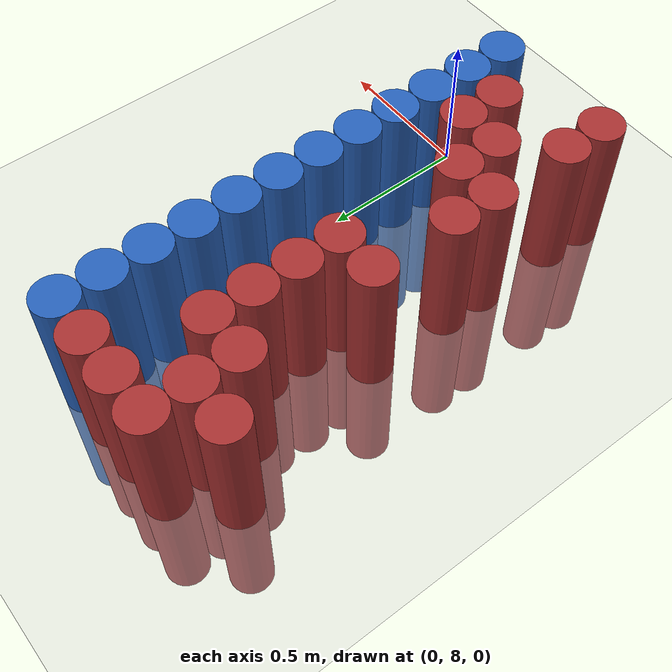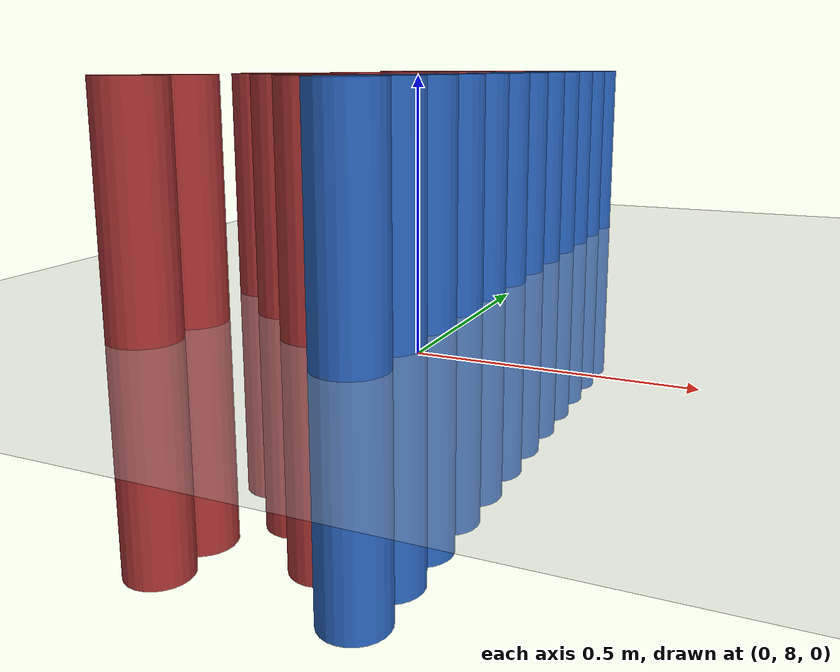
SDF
<sdf version="1.6">
 <world name="default">
  <model name="ground_plane">
   <static>1</static>
   <link name="link">
    <collision name="collision">
     <geometry><plane><normal>0 0 1</normal><size>100 100</size></plane></geometry>
     <surface><friction><ode><mu>100</mu><mu2>50</mu2></ode></friction></surface>
    </collision>
    <visual name="visual">
     <cast_shadows>0</cast_shadows>
     <geometry><plane><normal>0 0 1</normal><size>100 100</size></plane></geometry>
     <material>
      <script><uri>file://media/materials/scripts/gazebo.material</uri><name>Gazebo/Grey</name></script>
     </material>
    </visual>
   </link>
  </model>
  <model name="unit_cylinder_292">
   <static>1</static>
   <pose>-0.675000 9.375000 0.000000 0.000000 0.000000 0.000000</pose>
   <link name="link">
    <inertial>
     <mass>1</mass>
     <inertia><ixx>0.145833</ixx><ixy>0</ixy><ixz>0</ixz><iyy>0.145833</iyy><iyz>0</iyz><izz>0.125</izz></inertia>
    </inertial>
    <collision name="collision">
     <geometry><cylinder><radius>0.075000</radius><length>1</length></cylinder></geometry>
    </collision>
    <visual name="visual">
     <geometry><cylinder><radius>0.075000</radius><length>1</length></cylinder></geometry>
     <material>
      <ambient>0.648000 0.192000 0.192000 1</ambient>
      <diffuse>0.648000 0.192000 0.192000 1</diffuse>
     </material>
     <material>
      <script><name>Gazebo/Grey</name><uri>file://media/materials/scripts/gazebo.material</uri></script>
     </material>
    </visual>
    <sensor name="sensor_contact" type="contact"><contact><collision>collision</collision></contact></sensor>
   </link>
   <plugin filename="gz-sim-touchplugin-system" name="gz::sim::systems::TouchPlugin">
    <target>robot</target>
    <namespace>robot</namespace>
    <time>0.001</time>
    <enabled>true</enabled>
   </plugin>
  </model>
  <model name="unit_cylinder_297">
   <static>1</static>
   <pose>-0.525000 7.875000 0.000000 0.000000 0.000000 0.000000</pose>
   <link name="link">
    <inertial>
     <mass>1</mass>
     <inertia><ixx>0.145833</ixx><ixy>0</ixy><ixz>0</ixz><iyy>0.145833</iyy><iyz>0</iyz><izz>0.125</izz></inertia>
    </inertial>
    <collision name="collision">
     <geometry><cylinder><radius>0.075000</radius><length>1</length></cylinder></geometry>
    </collision>
    <visual name="visual">
     <geometry><cylinder><radius>0.075000</radius><length>1</length></cylinder></geometry>
     <material>
      <ambient>0.648000 0.192000 0.192000 1</ambient>
      <diffuse>0.648000 0.192000 0.192000 1</diffuse>
     </material>
     <material>
      <script><name>Gazebo/Grey</name><uri>file://media/materials/scripts/gazebo.material</uri></script>
     </material>
    </visual>
    <sensor name="sensor_contact" type="contact"><contact><collision>collision</collision></contact></sensor>
   </link>
   <plugin filename="gz-sim-touchplugin-system" name="gz::sim::systems::TouchPlugin">
    <target>robot</target>
    <namespace>robot</namespace>
    <time>0.001</time>
    <enabled>true</enabled>
   </plugin>
  </model>
  <model name="unit_cylinder_298">
   <static>1</static>
   <pose>-0.525000 8.025000 0.000000 0.000000 0.000000 0.000000</pose>
   <link name="link">
    <inertial>
     <mass>1</mass>
     <inertia><ixx>0.145833</ixx><ixy>0</ixy><ixz>0</ixz><iyy>0.145833</iyy><iyz>0</iyz><izz>0.125</izz></inertia>
    </inertial>
    <collision name="collision">
     <geometry><cylinder><radius>0.075000</radius><length>1</length></cylinder></geometry>
    </collision>
    <visual name="visual">
     <geometry><cylinder><radius>0.075000</radius><length>1</length></cylinder></geometry>
     <material>
      <ambient>0.648000 0.192000 0.192000 1</ambient>
      <diffuse>0.648000 0.192000 0.192000 1</diffuse>
     </material>
     <material>
      <script><name>Gazebo/Grey</name><uri>file://media/materials/scripts/gazebo.material</uri></script>
     </material>
    </visual>
    <sensor name="sensor_contact" type="contact"><contact><collision>collision</collision></contact></sensor>
   </link>
   <plugin filename="gz-sim-touchplugin-system" name="gz::sim::systems::TouchPlugin">
    <target>robot</target>
    <namespace>robot</namespace>
    <time>0.001</time>
    <enabled>true</enabled>
   </plugin>
  </model>
  <model name="unit_cylinder_299">
   <static>1</static>
   <pose>-0.525000 8.325000 0.000000 0.000000 0.000000 0.000000</pose>
   <link name="link">
    <inertial>
     <mass>1</mass>
     <inertia><ixx>0.145833</ixx><ixy>0</ixy><ixz>0</ixz><iyy>0.145833</iyy><iyz>0</iyz><izz>0.125</izz></inertia>
    </inertial>
    <collision name="collision">
     <geometry><cylinder><radius>0.075000</radius><length>1</length></cylinder></geometry>
    </collision>
    <visual name="visual">
     <geometry><cylinder><radius>0.075000</radius><length>1</length></cylinder></geometry>
     <material>
      <ambient>0.648000 0.192000 0.192000 1</ambient>
      <diffuse>0.648000 0.192000 0.192000 1</diffuse>
     </material>
     <material>
      <script><name>Gazebo/Grey</name><uri>file://media/materials/scripts/gazebo.material</uri></script>
     </material>
    </visual>
    <sensor name="sensor_contact" type="contact"><contact><collision>collision</collision></contact></sensor>
   </link>
   <plugin filename="gz-sim-touchplugin-system" name="gz::sim::systems::TouchPlugin">
    <target>robot</target>
    <namespace>robot</namespace>
    <time>0.001</time>
    <enabled>true</enabled>
   </plugin>
  </model>
  <model name="unit_cylinder_300">
   <static>1</static>
   <pose>-0.525000 8.475000 0.000000 0.000000 0.000000 0.000000</pose>
   <link name="link">
    <inertial>
     <mass>1</mass>
     <inertia><ixx>0.145833</ixx><ixy>0</ixy><ixz>0</ixz><iyy>0.145833</iyy><iyz>0</iyz><izz>0.125</izz></inertia>
    </inertial>
    <collision name="collision">
     <geometry><cylinder><radius>0.075000</radius><length>1</length></cylinder></geometry>
    </collision>
    <visual name="visual">
     <geometry><cylinder><radius>0.075000</radius><length>1</length></cylinder></geometry>
     <material>
      <ambient>0.648000 0.192000 0.192000 1</ambient>
      <diffuse>0.648000 0.192000 0.192000 1</diffuse>
     </material>
     <material>
      <script><name>Gazebo/Grey</name><uri>file://media/materials/scripts/gazebo.material</uri></script>
     </material>
    </visual>
    <sensor name="sensor_contact" type="contact"><contact><collision>collision</collision></contact></sensor>
   </link>
   <plugin filename="gz-sim-touchplugin-system" name="gz::sim::systems::TouchPlugin">
    <target>robot</target>
    <namespace>robot</namespace>
    <time>0.001</time>
    <enabled>true</enabled>
   </plugin>
  </model>
  <model name="unit_cylinder_301">
   <static>1</static>
   <pose>-0.525000 8.775000 0.000000 0.000000 0.000000 0.000000</pose>
   <link name="link">
    <inertial>
     <mass>1</mass>
     <inertia><ixx>0.145833</ixx><ixy>0</ixy><ixz>0</ixz><iyy>0.145833</iyy><iyz>0</iyz><izz>0.125</izz></inertia>
    </inertial>
    <collision name="collision">
     <geometry><cylinder><radius>0.075000</radius><length>1</length></cylinder></geometry>
    </collision>
    <visual name="visual">
     <geometry><cylinder><radius>0.075000</radius><length>1</length></cylinder></geometry>
     <material>
      <ambient>0.648000 0.192000 0.192000 1</ambient>
      <diffuse>0.648000 0.192000 0.192000 1</diffuse>
     </material>
     <material>
      <script><name>Gazebo/Grey</name><uri>file://media/materials/scripts/gazebo.material</uri></script>
     </material>
    </visual>
    <sensor name="sensor_contact" type="contact"><contact><collision>collision</collision></contact></sensor>
   </link>
   <plugin filename="gz-sim-touchplugin-system" name="gz::sim::systems::TouchPlugin">
    <target>robot</target>
    <namespace>robot</namespace>
    <time>0.001</time>
    <enabled>true</enabled>
   </plugin>
  </model>
  <model name="unit_cylinder_302">
   <static>1</static>
   <pose>-0.525000 9.225000 0.000000 0.000000 0.000000 0.000000</pose>
   <link name="link">
    <inertial>
     <mass>1</mass>
     <inertia><ixx>0.145833</ixx><ixy>0</ixy><ixz>0</ixz><iyy>0.145833</iyy><iyz>0</iyz><izz>0.125</izz></inertia>
    </inertial>
    <collision name="collision">
     <geometry><cylinder><radius>0.075000</radius><length>1</length></cylinder></geometry>
    </collision>
    <visual name="visual">
     <geometry><cylinder><radius>0.075000</radius><length>1</length></cylinder></geometry>
     <material>
      <ambient>0.648000 0.192000 0.192000 1</ambient>
      <diffuse>0.648000 0.192000 0.192000 1</diffuse>
     </material>
     <material>
      <script><name>Gazebo/Grey</name><uri>file://media/materials/scripts/gazebo.material</uri></script>
     </material>
    </visual>
    <sensor name="sensor_contact" type="contact"><contact><collision>collision</collision></contact></sensor>
   </link>
   <plugin filename="gz-sim-touchplugin-system" name="gz::sim::systems::TouchPlugin">
    <target>robot</target>
    <namespace>robot</namespace>
    <time>0.001</time>
    <enabled>true</enabled>
   </plugin>
  </model>
  <model name="unit_cylinder_303">
   <static>1</static>
   <pose>-0.525000 9.375000 0.000000 0.000000 0.000000 0.000000</pose>
   <link name="link">
    <inertial>
     <mass>1</mass>
     <inertia><ixx>0.145833</ixx><ixy>0</ixy><ixz>0</ixz><iyy>0.145833</iyy><iyz>0</iyz><izz>0.125</izz></inertia>
    </inertial>
    <collision name="collision">
     <geometry><cylinder><radius>0.075000</radius><length>1</length></cylinder></geometry>
    </collision>
    <visual name="visual">
     <geometry><cylinder><radius>0.075000</radius><length>1</length></cylinder></geometry>
     <material>
      <ambient>0.648000 0.192000 0.192000 1</ambient>
      <diffuse>0.648000 0.192000 0.192000 1</diffuse>
     </material>
     <material>
      <script><name>Gazebo/Grey</name><uri>file://media/materials/scripts/gazebo.material</uri></script>
     </material>
    </visual>
    <sensor name="sensor_contact" type="contact"><contact><collision>collision</collision></contact></sensor>
   </link>
   <plugin filename="gz-sim-touchplugin-system" name="gz::sim::systems::TouchPlugin">
    <target>robot</target>
    <namespace>robot</namespace>
    <time>0.001</time>
    <enabled>true</enabled>
   </plugin>
  </model>
  <model name="unit_cylinder_304">
   <static>1</static>
   <pose>-0.525000 9.525000 0.000000 0.000000 0.000000 0.000000</pose>
   <link name="link">
    <inertial>
     <mass>1</mass>
     <inertia><ixx>0.145833</ixx><ixy>0</ixy><ixz>0</ixz><iyy>0.145833</iyy><iyz>0</iyz><izz>0.125</izz></inertia>
    </inertial>
    <collision name="collision">
     <geometry><cylinder><radius>0.075000</radius><length>1</length></cylinder></geometry>
    </collision>
    <visual name="visual">
     <geometry><cylinder><radius>0.075000</radius><length>1</length></cylinder></geometry>
     <material>
      <ambient>0.648000 0.192000 0.192000 1</ambient>
      <diffuse>0.648000 0.192000 0.192000 1</diffuse>
     </material>
     <material>
      <script><name>Gazebo/Grey</name><uri>file://media/materials/scripts/gazebo.material</uri></script>
     </material>
    </visual>
    <sensor name="sensor_contact" type="contact"><contact><collision>collision</collision></contact></sensor>
   </link>
   <plugin filename="gz-sim-touchplugin-system" name="gz::sim::systems::TouchPlugin">
    <target>robot</target>
    <namespace>robot</namespace>
    <time>0.001</time>
    <enabled>true</enabled>
   </plugin>
  </model>
  <model name="unit_cylinder_313">
   <static>1</static>
   <pose>-0.375000 8.175000 0.000000 0.000000 0.000000 0.000000</pose>
   <link name="link">
    <inertial>
     <mass>1</mass>
     <inertia><ixx>0.145833</ixx><ixy>0</ixy><ixz>0</ixz><iyy>0.145833</iyy><iyz>0</iyz><izz>0.125</izz></inertia>
    </inertial>
    <collision name="collision">
     <geometry><cylinder><radius>0.075000</radius><length>1</length></cylinder></geometry>
    </collision>
    <visual name="visual">
     <geometry><cylinder><radius>0.075000</radius><length>1</length></cylinder></geometry>
     <material>
      <ambient>0.648000 0.192000 0.192000 1</ambient>
      <diffuse>0.648000 0.192000 0.192000 1</diffuse>
     </material>
     <material>
      <script><name>Gazebo/Grey</name><uri>file://media/materials/scripts/gazebo.material</uri></script>
     </material>
    </visual>
    <sensor name="sensor_contact" type="contact"><contact><collision>collision</collision></contact></sensor>
   </link>
   <plugin filename="gz-sim-touchplugin-system" name="gz::sim::systems::TouchPlugin">
    <target>robot</target>
    <namespace>robot</namespace>
    <time>0.001</time>
    <enabled>true</enabled>
   </plugin>
  </model>
  <model name="unit_cylinder_314">
   <static>1</static>
   <pose>-0.375000 8.325000 0.000000 0.000000 0.000000 0.000000</pose>
   <link name="link">
    <inertial>
     <mass>1</mass>
     <inertia><ixx>0.145833</ixx><ixy>0</ixy><ixz>0</ixz><iyy>0.145833</iyy><iyz>0</iyz><izz>0.125</izz></inertia>
    </inertial>
    <collision name="collision">
     <geometry><cylinder><radius>0.075000</radius><length>1</length></cylinder></geometry>
    </collision>
    <visual name="visual">
     <geometry><cylinder><radius>0.075000</radius><length>1</length></cylinder></geometry>
     <material>
      <ambient>0.648000 0.192000 0.192000 1</ambient>
      <diffuse>0.648000 0.192000 0.192000 1</diffuse>
     </material>
     <material>
      <script><name>Gazebo/Grey</name><uri>file://media/materials/scripts/gazebo.material</uri></script>
     </material>
    </visual>
    <sensor name="sensor_contact" type="contact"><contact><collision>collision</collision></contact></sensor>
   </link>
   <plugin filename="gz-sim-touchplugin-system" name="gz::sim::systems::TouchPlugin">
    <target>robot</target>
    <namespace>robot</namespace>
    <time>0.001</time>
    <enabled>true</enabled>
   </plugin>
  </model>
  <model name="unit_cylinder_315">
   <static>1</static>
   <pose>-0.375000 8.775000 0.000000 0.000000 0.000000 0.000000</pose>
   <link name="link">
    <inertial>
     <mass>1</mass>
     <inertia><ixx>0.145833</ixx><ixy>0</ixy><ixz>0</ixz><iyy>0.145833</iyy><iyz>0</iyz><izz>0.125</izz></inertia>
    </inertial>
    <collision name="collision">
     <geometry><cylinder><radius>0.075000</radius><length>1</length></cylinder></geometry>
    </collision>
    <visual name="visual">
     <geometry><cylinder><radius>0.075000</radius><length>1</length></cylinder></geometry>
     <material>
      <ambient>0.648000 0.192000 0.192000 1</ambient>
      <diffuse>0.648000 0.192000 0.192000 1</diffuse>
     </material>
     <material>
      <script><name>Gazebo/Grey</name><uri>file://media/materials/scripts/gazebo.material</uri></script>
     </material>
    </visual>
    <sensor name="sensor_contact" type="contact"><contact><collision>collision</collision></contact></sensor>
   </link>
   <plugin filename="gz-sim-touchplugin-system" name="gz::sim::systems::TouchPlugin">
    <target>robot</target>
    <namespace>robot</namespace>
    <time>0.001</time>
    <enabled>true</enabled>
   </plugin>
  </model>
  <model name="unit_cylinder_316">
   <static>1</static>
   <pose>-0.375000 8.925000 0.000000 0.000000 0.000000 0.000000</pose>
   <link name="link">
    <inertial>
     <mass>1</mass>
     <inertia><ixx>0.145833</ixx><ixy>0</ixy><ixz>0</ixz><iyy>0.145833</iyy><iyz>0</iyz><izz>0.125</izz></inertia>
    </inertial>
    <collision name="collision">
     <geometry><cylinder><radius>0.075000</radius><length>1</length></cylinder></geometry>
    </collision>
    <visual name="visual">
     <geometry><cylinder><radius>0.075000</radius><length>1</length></cylinder></geometry>
     <material>
      <ambient>0.648000 0.192000 0.192000 1</ambient>
      <diffuse>0.648000 0.192000 0.192000 1</diffuse>
     </material>
     <material>
      <script><name>Gazebo/Grey</name><uri>file://media/materials/scripts/gazebo.material</uri></script>
     </material>
    </visual>
    <sensor name="sensor_contact" type="contact"><contact><collision>collision</collision></contact></sensor>
   </link>
   <plugin filename="gz-sim-touchplugin-system" name="gz::sim::systems::TouchPlugin">
    <target>robot</target>
    <namespace>robot</namespace>
    <time>0.001</time>
    <enabled>true</enabled>
   </plugin>
  </model>
  <model name="unit_cylinder_317">
   <static>1</static>
   <pose>-0.375000 9.075000 0.000000 0.000000 0.000000 0.000000</pose>
   <link name="link">
    <inertial>
     <mass>1</mass>
     <inertia><ixx>0.145833</ixx><ixy>0</ixy><ixz>0</ixz><iyy>0.145833</iyy><iyz>0</iyz><izz>0.125</izz></inertia>
    </inertial>
    <collision name="collision">
     <geometry><cylinder><radius>0.075000</radius><length>1</length></cylinder></geometry>
    </collision>
    <visual name="visual">
     <geometry><cylinder><radius>0.075000</radius><length>1</length></cylinder></geometry>
     <material>
      <ambient>0.648000 0.192000 0.192000 1</ambient>
      <diffuse>0.648000 0.192000 0.192000 1</diffuse>
     </material>
     <material>
      <script><name>Gazebo/Grey</name><uri>file://media/materials/scripts/gazebo.material</uri></script>
     </material>
    </visual>
    <sensor name="sensor_contact" type="contact"><contact><collision>collision</collision></contact></sensor>
   </link>
   <plugin filename="gz-sim-touchplugin-system" name="gz::sim::systems::TouchPlugin">
    <target>robot</target>
    <namespace>robot</namespace>
    <time>0.001</time>
    <enabled>true</enabled>
   </plugin>
  </model>
  <model name="unit_cylinder_318">
   <static>1</static>
   <pose>-0.375000 9.225000 0.000000 0.000000 0.000000 0.000000</pose>
   <link name="link">
    <inertial>
     <mass>1</mass>
     <inertia><ixx>0.145833</ixx><ixy>0</ixy><ixz>0</ixz><iyy>0.145833</iyy><iyz>0</iyz><izz>0.125</izz></inertia>
    </inertial>
    <collision name="collision">
     <geometry><cylinder><radius>0.075000</radius><length>1</length></cylinder></geometry>
    </collision>
    <visual name="visual">
     <geometry><cylinder><radius>0.075000</radius><length>1</length></cylinder></geometry>
     <material>
      <ambient>0.648000 0.192000 0.192000 1</ambient>
      <diffuse>0.648000 0.192000 0.192000 1</diffuse>
     </material>
     <material>
      <script><name>Gazebo/Grey</name><uri>file://media/materials/scripts/gazebo.material</uri></script>
     </material>
    </visual>
    <sensor name="sensor_contact" type="contact"><contact><collision>collision</collision></contact></sensor>
   </link>
   <plugin filename="gz-sim-touchplugin-system" name="gz::sim::systems::TouchPlugin">
    <target>robot</target>
    <namespace>robot</namespace>
    <time>0.001</time>
    <enabled>true</enabled>
   </plugin>
  </model>
  <model name="unit_cylinder_319">
   <static>1</static>
   <pose>-0.375000 9.525000 0.000000 0.000000 0.000000 0.000000</pose>
   <link name="link">
    <inertial>
     <mass>1</mass>
     <inertia><ixx>0.145833</ixx><ixy>0</ixy><ixz>0</ixz><iyy>0.145833</iyy><iyz>0</iyz><izz>0.125</izz></inertia>
    </inertial>
    <collision name="collision">
     <geometry><cylinder><radius>0.075000</radius><length>1</length></cylinder></geometry>
    </collision>
    <visual name="visual">
     <geometry><cylinder><radius>0.075000</radius><length>1</length></cylinder></geometry>
     <material>
      <ambient>0.648000 0.192000 0.192000 1</ambient>
      <diffuse>0.648000 0.192000 0.192000 1</diffuse>
     </material>
     <material>
      <script><name>Gazebo/Grey</name><uri>file://media/materials/scripts/gazebo.material</uri></script>
     </material>
    </visual>
    <sensor name="sensor_contact" type="contact"><contact><collision>collision</collision></contact></sensor>
   </link>
   <plugin filename="gz-sim-touchplugin-system" name="gz::sim::systems::TouchPlugin">
    <target>robot</target>
    <namespace>robot</namespace>
    <time>0.001</time>
    <enabled>true</enabled>
   </plugin>
  </model>
  <model name="unit_cylinder_332">
   <static>1</static>
   <pose>-0.225000 8.025000 0.000000 0.000000 0.000000 0.000000</pose>
   <link name="link">
    <inertial>
     <mass>1</mass>
     <inertia><ixx>0.145833</ixx><ixy>0</ixy><ixz>0</ixz><iyy>0.145833</iyy><iyz>0</iyz><izz>0.125</izz></inertia>
    </inertial>
    <collision name="collision">
     <geometry><cylinder><radius>0.075000</radius><length>1</length></cylinder></geometry>
    </collision>
    <visual name="visual">
     <geometry><cylinder><radius>0.075000</radius><length>1</length></cylinder></geometry>
     <material>
      <ambient>0.648000 0.192000 0.192000 1</ambient>
      <diffuse>0.648000 0.192000 0.192000 1</diffuse>
     </material>
     <material>
      <script><name>Gazebo/Grey</name><uri>file://media/materials/scripts/gazebo.material</uri></script>
     </material>
    </visual>
    <sensor name="sensor_contact" type="contact"><contact><collision>collision</collision></contact></sensor>
   </link>
   <plugin filename="gz-sim-touchplugin-system" name="gz::sim::systems::TouchPlugin">
    <target>robot</target>
    <namespace>robot</namespace>
    <time>0.001</time>
    <enabled>true</enabled>
   </plugin>
  </model>
  <model name="unit_cylinder_333">
   <static>1</static>
   <pose>-0.225000 8.175000 0.000000 0.000000 0.000000 0.000000</pose>
   <link name="link">
    <inertial>
     <mass>1</mass>
     <inertia><ixx>0.145833</ixx><ixy>0</ixy><ixz>0</ixz><iyy>0.145833</iyy><iyz>0</iyz><izz>0.125</izz></inertia>
    </inertial>
    <collision name="collision">
     <geometry><cylinder><radius>0.075000</radius><length>1</length></cylinder></geometry>
    </collision>
    <visual name="visual">
     <geometry><cylinder><radius>0.075000</radius><length>1</length></cylinder></geometry>
     <material>
      <ambient>0.648000 0.192000 0.192000 1</ambient>
      <diffuse>0.648000 0.192000 0.192000 1</diffuse>
     </material>
     <material>
      <script><name>Gazebo/Grey</name><uri>file://media/materials/scripts/gazebo.material</uri></script>
     </material>
    </visual>
    <sensor name="sensor_contact" type="contact"><contact><collision>collision</collision></contact></sensor>
   </link>
   <plugin filename="gz-sim-touchplugin-system" name="gz::sim::systems::TouchPlugin">
    <target>robot</target>
    <namespace>robot</namespace>
    <time>0.001</time>
    <enabled>true</enabled>
   </plugin>
  </model>
  <model name="unit_cylinder_334">
   <static>1</static>
   <pose>-0.225000 9.525000 0.000000 0.000000 0.000000 0.000000</pose>
   <link name="link">
    <inertial>
     <mass>1</mass>
     <inertia><ixx>0.145833</ixx><ixy>0</ixy><ixz>0</ixz><iyy>0.145833</iyy><iyz>0</iyz><izz>0.125</izz></inertia>
    </inertial>
    <collision name="collision">
     <geometry><cylinder><radius>0.075000</radius><length>1</length></cylinder></geometry>
    </collision>
    <visual name="visual">
     <geometry><cylinder><radius>0.075000</radius><length>1</length></cylinder></geometry>
     <material>
      <ambient>0.648000 0.192000 0.192000 1</ambient>
      <diffuse>0.648000 0.192000 0.192000 1</diffuse>
     </material>
     <material>
      <script><name>Gazebo/Grey</name><uri>file://media/materials/scripts/gazebo.material</uri></script>
     </material>
    </visual>
    <sensor name="sensor_contact" type="contact"><contact><collision>collision</collision></contact></sensor>
   </link>
   <plugin filename="gz-sim-touchplugin-system" name="gz::sim::systems::TouchPlugin">
    <target>robot</target>
    <namespace>robot</namespace>
    <time>0.001</time>
    <enabled>true</enabled>
   </plugin>
  </model>
  <model name="unit_cylinder_353">
   <static>1</static>
   <pose>-0.075000 7.875000 0.000000 0.000000 0.000000 0.000000</pose>
   <link name="link">
    <inertial>
     <mass>1</mass>
     <inertia><ixx>0.145833</ixx><ixy>0</ixy><ixz>0</ixz><iyy>0.145833</iyy><iyz>0</iyz><izz>0.125</izz></inertia>
    </inertial>
    <collision name="collision">
     <geometry><cylinder><radius>0.075000</radius><length>1</length></cylinder></geometry>
    </collision>
    <visual name="visual">
     <geometry><cylinder><radius>0.075000</radius><length>1</length></cylinder></geometry>
     <material>
      <ambient>0.152000 0.379000 0.720000 1</ambient>
      <diffuse>0.152000 0.379000 0.720000 1</diffuse>
     </material>
     <material>
      <script><name>Gazebo/Grey</name><uri>file://media/materials/scripts/gazebo.material</uri></script>
     </material>
    </visual>
    <sensor name="sensor_contact" type="contact"><contact><collision>collision</collision></contact></sensor>
   </link>
   <plugin filename="gz-sim-touchplugin-system" name="gz::sim::systems::TouchPlugin">
    <target>robot</target>
    <namespace>robot</namespace>
    <time>0.001</time>
    <enabled>true</enabled>
   </plugin>
  </model>
  <model name="unit_cylinder_354">
   <static>1</static>
   <pose>-0.075000 8.025000 0.000000 0.000000 0.000000 0.000000</pose>
   <link name="link">
    <inertial>
     <mass>1</mass>
     <inertia><ixx>0.145833</ixx><ixy>0</ixy><ixz>0</ixz><iyy>0.145833</iyy><iyz>0</iyz><izz>0.125</izz></inertia>
    </inertial>
    <collision name="collision">
     <geometry><cylinder><radius>0.075000</radius><length>1</length></cylinder></geometry>
    </collision>
    <visual name="visual">
     <geometry><cylinder><radius>0.075000</radius><length>1</length></cylinder></geometry>
     <material>
      <ambient>0.152000 0.379000 0.720000 1</ambient>
      <diffuse>0.152000 0.379000 0.720000 1</diffuse>
     </material>
     <material>
      <script><name>Gazebo/Grey</name><uri>file://media/materials/scripts/gazebo.material</uri></script>
     </material>
    </visual>
    <sensor name="sensor_contact" type="contact"><contact><collision>collision</collision></contact></sensor>
   </link>
   <plugin filename="gz-sim-touchplugin-system" name="gz::sim::systems::TouchPlugin">
    <target>robot</target>
    <namespace>robot</namespace>
    <time>0.001</time>
    <enabled>true</enabled>
   </plugin>
  </model>
  <model name="unit_cylinder_355">
   <static>1</static>
   <pose>-0.075000 8.175000 0.000000 0.000000 0.000000 0.000000</pose>
   <link name="link">
    <inertial>
     <mass>1</mass>
     <inertia><ixx>0.145833</ixx><ixy>0</ixy><ixz>0</ixz><iyy>0.145833</iyy><iyz>0</iyz><izz>0.125</izz></inertia>
    </inertial>
    <collision name="collision">
     <geometry><cylinder><radius>0.075000</radius><length>1</length></cylinder></geometry>
    </collision>
    <visual name="visual">
     <geometry><cylinder><radius>0.075000</radius><length>1</length></cylinder></geometry>
     <material>
      <ambient>0.152000 0.379000 0.720000 1</ambient>
      <diffuse>0.152000 0.379000 0.720000 1</diffuse>
     </material>
     <material>
      <script><name>Gazebo/Grey</name><uri>file://media/materials/scripts/gazebo.material</uri></script>
     </material>
    </visual>
    <sensor name="sensor_contact" type="contact"><contact><collision>collision</collision></contact></sensor>
   </link>
   <plugin filename="gz-sim-touchplugin-system" name="gz::sim::systems::TouchPlugin">
    <target>robot</target>
    <namespace>robot</namespace>
    <time>0.001</time>
    <enabled>true</enabled>
   </plugin>
  </model>
  <model name="unit_cylinder_356">
   <static>1</static>
   <pose>-0.075000 8.325000 0.000000 0.000000 0.000000 0.000000</pose>
   <link name="link">
    <inertial>
     <mass>1</mass>
     <inertia><ixx>0.145833</ixx><ixy>0</ixy><ixz>0</ixz><iyy>0.145833</iyy><iyz>0</iyz><izz>0.125</izz></inertia>
    </inertial>
    <collision name="collision">
     <geometry><cylinder><radius>0.075000</radius><length>1</length></cylinder></geometry>
    </collision>
    <visual name="visual">
     <geometry><cylinder><radius>0.075000</radius><length>1</length></cylinder></geometry>
     <material>
      <ambient>0.152000 0.379000 0.720000 1</ambient>
      <diffuse>0.152000 0.379000 0.720000 1</diffuse>
     </material>
     <material>
      <script><name>Gazebo/Grey</name><uri>file://media/materials/scripts/gazebo.material</uri></script>
     </material>
    </visual>
    <sensor name="sensor_contact" type="contact"><contact><collision>collision</collision></contact></sensor>
   </link>
   <plugin filename="gz-sim-touchplugin-system" name="gz::sim::systems::TouchPlugin">
    <target>robot</target>
    <namespace>robot</namespace>
    <time>0.001</time>
    <enabled>true</enabled>
   </plugin>
  </model>
  <model name="unit_cylinder_357">
   <static>1</static>
   <pose>-0.075000 8.475000 0.000000 0.000000 0.000000 0.000000</pose>
   <link name="link">
    <inertial>
     <mass>1</mass>
     <inertia><ixx>0.145833</ixx><ixy>0</ixy><ixz>0</ixz><iyy>0.145833</iyy><iyz>0</iyz><izz>0.125</izz></inertia>
    </inertial>
    <collision name="collision">
     <geometry><cylinder><radius>0.075000</radius><length>1</length></cylinder></geometry>
    </collision>
    <visual name="visual">
     <geometry><cylinder><radius>0.075000</radius><length>1</length></cylinder></geometry>
     <material>
      <ambient>0.152000 0.379000 0.720000 1</ambient>
      <diffuse>0.152000 0.379000 0.720000 1</diffuse>
     </material>
     <material>
      <script><name>Gazebo/Grey</name><uri>file://media/materials/scripts/gazebo.material</uri></script>
     </material>
    </visual>
    <sensor name="sensor_contact" type="contact"><contact><collision>collision</collision></contact></sensor>
   </link>
   <plugin filename="gz-sim-touchplugin-system" name="gz::sim::systems::TouchPlugin">
    <target>robot</target>
    <namespace>robot</namespace>
    <time>0.001</time>
    <enabled>true</enabled>
   </plugin>
  </model>
  <model name="unit_cylinder_358">
   <static>1</static>
   <pose>-0.075000 8.625000 0.000000 0.000000 0.000000 0.000000</pose>
   <link name="link">
    <inertial>
     <mass>1</mass>
     <inertia><ixx>0.145833</ixx><ixy>0</ixy><ixz>0</ixz><iyy>0.145833</iyy><iyz>0</iyz><izz>0.125</izz></inertia>
    </inertial>
    <collision name="collision">
     <geometry><cylinder><radius>0.075000</radius><length>1</length></cylinder></geometry>
    </collision>
    <visual name="visual">
     <geometry><cylinder><radius>0.075000</radius><length>1</length></cylinder></geometry>
     <material>
      <ambient>0.152000 0.379000 0.720000 1</ambient>
      <diffuse>0.152000 0.379000 0.720000 1</diffuse>
     </material>
     <material>
      <script><name>Gazebo/Grey</name><uri>file://media/materials/scripts/gazebo.material</uri></script>
     </material>
    </visual>
    <sensor name="sensor_contact" type="contact"><contact><collision>collision</collision></contact></sensor>
   </link>
   <plugin filename="gz-sim-touchplugin-system" name="gz::sim::systems::TouchPlugin">
    <target>robot</target>
    <namespace>robot</namespace>
    <time>0.001</time>
    <enabled>true</enabled>
   </plugin>
  </model>
  <model name="unit_cylinder_359">
   <static>1</static>
   <pose>-0.075000 8.775000 0.000000 0.000000 0.000000 0.000000</pose>
   <link name="link">
    <inertial>
     <mass>1</mass>
     <inertia><ixx>0.145833</ixx><ixy>0</ixy><ixz>0</ixz><iyy>0.145833</iyy><iyz>0</iyz><izz>0.125</izz></inertia>
    </inertial>
    <collision name="collision">
     <geometry><cylinder><radius>0.075000</radius><length>1</length></cylinder></geometry>
    </collision>
    <visual name="visual">
     <geometry><cylinder><radius>0.075000</radius><length>1</length></cylinder></geometry>
     <material>
      <ambient>0.152000 0.379000 0.720000 1</ambient>
      <diffuse>0.152000 0.379000 0.720000 1</diffuse>
     </material>
     <material>
      <script><name>Gazebo/Grey</name><uri>file://media/materials/scripts/gazebo.material</uri></script>
     </material>
    </visual>
    <sensor name="sensor_contact" type="contact"><contact><collision>collision</collision></contact></sensor>
   </link>
   <plugin filename="gz-sim-touchplugin-system" name="gz::sim::systems::TouchPlugin">
    <target>robot</target>
    <namespace>robot</namespace>
    <time>0.001</time>
    <enabled>true</enabled>
   </plugin>
  </model>
  <model name="unit_cylinder_360">
   <static>1</static>
   <pose>-0.075000 8.925000 0.000000 0.000000 0.000000 0.000000</pose>
   <link name="link">
    <inertial>
     <mass>1</mass>
     <inertia><ixx>0.145833</ixx><ixy>0</ixy><ixz>0</ixz><iyy>0.145833</iyy><iyz>0</iyz><izz>0.125</izz></inertia>
    </inertial>
    <collision name="collision">
     <geometry><cylinder><radius>0.075000</radius><length>1</length></cylinder></geometry>
    </collision>
    <visual name="visual">
     <geometry><cylinder><radius>0.075000</radius><length>1</length></cylinder></geometry>
     <material>
      <ambient>0.152000 0.379000 0.720000 1</ambient>
      <diffuse>0.152000 0.379000 0.720000 1</diffuse>
     </material>
     <material>
      <script><name>Gazebo/Grey</name><uri>file://media/materials/scripts/gazebo.material</uri></script>
     </material>
    </visual>
    <sensor name="sensor_contact" type="contact"><contact><collision>collision</collision></contact></sensor>
   </link>
   <plugin filename="gz-sim-touchplugin-system" name="gz::sim::systems::TouchPlugin">
    <target>robot</target>
    <namespace>robot</namespace>
    <time>0.001</time>
    <enabled>true</enabled>
   </plugin>
  </model>
  <model name="unit_cylinder_361">
   <static>1</static>
   <pose>-0.075000 9.075000 0.000000 0.000000 0.000000 0.000000</pose>
   <link name="link">
    <inertial>
     <mass>1</mass>
     <inertia><ixx>0.145833</ixx><ixy>0</ixy><ixz>0</ixz><iyy>0.145833</iyy><iyz>0</iyz><izz>0.125</izz></inertia>
    </inertial>
    <collision name="collision">
     <geometry><cylinder><radius>0.075000</radius><length>1</length></cylinder></geometry>
    </collision>
    <visual name="visual">
     <geometry><cylinder><radius>0.075000</radius><length>1</length></cylinder></geometry>
     <material>
      <ambient>0.152000 0.379000 0.720000 1</ambient>
      <diffuse>0.152000 0.379000 0.720000 1</diffuse>
     </material>
     <material>
      <script><name>Gazebo/Grey</name><uri>file://media/materials/scripts/gazebo.material</uri></script>
     </material>
    </visual>
    <sensor name="sensor_contact" type="contact"><contact><collision>collision</collision></contact></sensor>
   </link>
   <plugin filename="gz-sim-touchplugin-system" name="gz::sim::systems::TouchPlugin">
    <target>robot</target>
    <namespace>robot</namespace>
    <time>0.001</time>
    <enabled>true</enabled>
   </plugin>
  </model>
  <model name="unit_cylinder_362">
   <static>1</static>
   <pose>-0.075000 9.225000 0.000000 0.000000 0.000000 0.000000</pose>
   <link name="link">
    <inertial>
     <mass>1</mass>
     <inertia><ixx>0.145833</ixx><ixy>0</ixy><ixz>0</ixz><iyy>0.145833</iyy><iyz>0</iyz><izz>0.125</izz></inertia>
    </inertial>
    <collision name="collision">
     <geometry><cylinder><radius>0.075000</radius><length>1</length></cylinder></geometry>
    </collision>
    <visual name="visual">
     <geometry><cylinder><radius>0.075000</radius><length>1</length></cylinder></geometry>
     <material>
      <ambient>0.152000 0.379000 0.720000 1</ambient>
      <diffuse>0.152000 0.379000 0.720000 1</diffuse>
     </material>
     <material>
      <script><name>Gazebo/Grey</name><uri>file://media/materials/scripts/gazebo.material</uri></script>
     </material>
    </visual>
    <sensor name="sensor_contact" type="contact"><contact><collision>collision</collision></contact></sensor>
   </link>
   <plugin filename="gz-sim-touchplugin-system" name="gz::sim::systems::TouchPlugin">
    <target>robot</target>
    <namespace>robot</namespace>
    <time>0.001</time>
    <enabled>true</enabled>
   </plugin>
  </model>
  <model name="unit_cylinder_363">
   <static>1</static>
   <pose>-0.075000 9.375000 0.000000 0.000000 0.000000 0.000000</pose>
   <link name="link">
    <inertial>
     <mass>1</mass>
     <inertia><ixx>0.145833</ixx><ixy>0</ixy><ixz>0</ixz><iyy>0.145833</iyy><iyz>0</iyz><izz>0.125</izz></inertia>
    </inertial>
    <collision name="collision">
     <geometry><cylinder><radius>0.075000</radius><length>1</length></cylinder></geometry>
    </collision>
    <visual name="visual">
     <geometry><cylinder><radius>0.075000</radius><length>1</length></cylinder></geometry>
     <material>
      <ambient>0.152000 0.379000 0.720000 1</ambient>
      <diffuse>0.152000 0.379000 0.720000 1</diffuse>
     </material>
     <material>
      <script><name>Gazebo/Grey</name><uri>file://media/materials/scripts/gazebo.material</uri></script>
     </material>
    </visual>
    <sensor name="sensor_contact" type="contact"><contact><collision>collision</collision></contact></sensor>
   </link>
   <plugin filename="gz-sim-touchplugin-system" name="gz::sim::systems::TouchPlugin">
    <target>robot</target>
    <namespace>robot</namespace>
    <time>0.001</time>
    <enabled>true</enabled>
   </plugin>
  </model>
  <model name="unit_cylinder_364">
   <static>1</static>
   <pose>-0.075000 9.525000 0.000000 0.000000 0.000000 0.000000</pose>
   <link name="link">
    <inertial>
     <mass>1</mass>
     <inertia><ixx>0.145833</ixx><ixy>0</ixy><ixz>0</ixz><iyy>0.145833</iyy><iyz>0</iyz><izz>0.125</izz></inertia>
    </inertial>
    <collision name="collision">
     <geometry><cylinder><radius>0.075000</radius><length>1</length></cylinder></geometry>
    </collision>
    <visual name="visual">
     <geometry><cylinder><radius>0.075000</radius><length>1</length></cylinder></geometry>
     <material>
      <ambient>0.152000 0.379000 0.720000 1</ambient>
      <diffuse>0.152000 0.379000 0.720000 1</diffuse>
     </material>
     <material>
      <script><name>Gazebo/Grey</name><uri>file://media/materials/scripts/gazebo.material</uri></script>
     </material>
    </visual>
    <sensor name="sensor_contact" type="contact"><contact><collision>collision</collision></contact></sensor>
   </link>
   <plugin filename="gz-sim-touchplugin-system" name="gz::sim::systems::TouchPlugin">
    <target>robot</target>
    <namespace>robot</namespace>
    <time>0.001</time>
    <enabled>true</enabled>
   </plugin>
  </model>
 </world>
</sdf>
